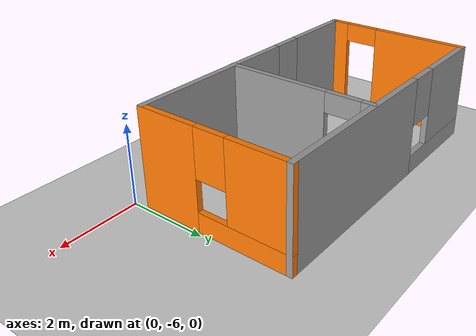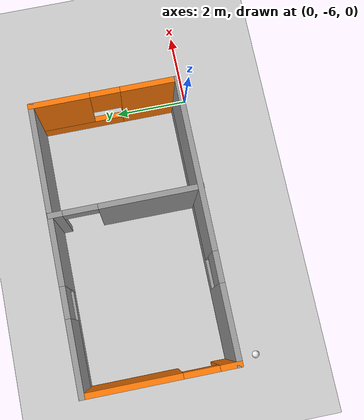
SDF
<sdf version="1.7">
 <world name="default">
  <model name="ground_plane">
   <static>1</static>
   <link name="link">
    <collision name="collision">
     <geometry><plane><normal>0 0 1</normal><size>100 100</size></plane></geometry>
     <surface>
      <contact><collide_bitmask>65535</collide_bitmask></contact>
      <friction><ode><mu>100</mu><mu2>50</mu2></ode></friction>
     </surface>
    </collision>
    <visual name="visual">
     <cast_shadows>0</cast_shadows>
     <geometry><plane><normal>0 0 1</normal><size>100 100</size></plane></geometry>
     <material>
      <script><uri>file://media/materials/scripts/gazebo.material</uri><name>Gazebo/Grey</name></script>
     </material>
    </visual>
   </link>
  </model>
  <light name="sun" type="directional">
   <pose>0 0 10 0 -0 0</pose>
   <diffuse>0.8 0.8 0.8 1</diffuse>
   <specular>0.2 0.2 0.2 1</specular>
   <attenuation>
    <range>1000</range>
    <constant>0.9</constant>
    <linear>0.01</linear>
    <quadratic>0.001</quadratic>
   </attenuation>
   <direction>-0.5 0.1 -0.9</direction>
   <spot><inner_angle>0</inner_angle><outer_angle>0</outer_angle><falloff>0</falloff></spot>
  </light>
  <gravity>0 0 -9.8</gravity>
  <magnetic_field>6e-06 2.3e-05 -4.2e-05</magnetic_field>
  <atmosphere type="adiabatic"/>
  <physics type="ode">
   <max_step_size>0.001</max_step_size>
   <real_time_factor>1</real_time_factor>
   <real_time_update_rate>1000</real_time_update_rate>
  </physics>
  <scene><ambient>0.4 0.4 0.4 1</ambient><background>0.7 0.7 0.7 1</background><shadows>1</shadows></scene>
  <spherical_coordinates>
   <surface_model>EARTH_WGS84</surface_model>
   <latitude_deg>0</latitude_deg>
   <longitude_deg>0</longitude_deg>
   <elevation>0</elevation>
   <heading_deg>0</heading_deg>
  </spherical_coordinates>
  <model name="my_world.world">
   <pose>-3.7925 -2.8575 0 0 -0 0</pose>
   <link name="Wall_0">
    <pose>-3.7175 -0.8475 0 0 -0 -1.5708</pose>
    <visual name="Wall_0_Visual_0">
     <pose>-0.7275 0 1.25 0 -0 0</pose>
     <geometry><box><size>2.545 0.15 2.5</size></box></geometry>
     <material>
      <script><uri>file://media/materials/scripts/gazebo.material</uri><name>Gazebo/Grey</name></script>
      <ambient>0.996078 0.47451 0.0196078 1</ambient>
     </material>
     <meta><layer>0</layer></meta>
    </visual>
    <collision name="Wall_0_Collision_0">
     <geometry><box><size>2.545 0.15 2.5</size></box></geometry>
     <pose>-0.7275 0 1.25 0 -0 0</pose>
    </collision>
    <visual name="Wall_0_Visual_1">
     <pose>1.7225 0 1.25 0 -0 0</pose>
     <geometry><box><size>0.555 0.15 2.5</size></box></geometry>
     <material>
      <script><uri>file://media/materials/scripts/gazebo.material</uri><name>Gazebo/Grey</name></script>
      <ambient>0.996078 0.47451 0.0196078 1</ambient>
     </material>
     <meta><layer>0</layer></meta>
    </visual>
    <collision name="Wall_0_Collision_1">
     <geometry><box><size>0.555 0.15 2.5</size></box></geometry>
     <pose>1.7225 0 1.25 0 -0 0</pose>
    </collision>
    <visual name="Wall_0_Visual_2">
     <pose>0.995 0 2.25 0 -0 0</pose>
     <geometry><box><size>0.9 0.15 0.5</size></box></geometry>
     <material>
      <script><uri>file://media/materials/scripts/gazebo.material</uri><name>Gazebo/Grey</name></script>
      <ambient>0.996078 0.47451 0.0196078 1</ambient>
     </material>
     <meta><layer>0</layer></meta>
    </visual>
    <collision name="Wall_0_Collision_2">
     <geometry><box><size>0.9 0.15 0.5</size></box></geometry>
     <pose>0.995 0 2.25 0 -0 0</pose>
    </collision>
   </link>
   <link name="Wall_1">
    <pose>-0.0425 -2.7725 0 0 -0 0</pose>
    <visual name="Wall_1_Visual_0">
     <pose>-2.7225 0 1.25 0 -0 0</pose>
     <geometry><box><size>2.055 0.15 2.5</size></box></geometry>
     <material>
      <script><uri>file://media/materials/scripts/gazebo.material</uri><name>Gazebo/Grey</name></script>
      <ambient>1 1 1 1</ambient>
     </material>
     <meta><layer>0</layer></meta>
    </visual>
    <collision name="Wall_1_Collision_0">
     <geometry><box><size>2.055 0.15 2.5</size></box></geometry>
     <pose>-2.7225 0 1.25 0 -0 0</pose>
    </collision>
    <visual name="Wall_1_Visual_1">
     <pose>1.0275 0 0.25 0 -0 0</pose>
     <geometry><box><size>5.445 0.15 0.5</size></box></geometry>
     <material>
      <script><uri>file://media/materials/scripts/gazebo.material</uri><name>Gazebo/Grey</name></script>
      <ambient>1 1 1 1</ambient>
     </material>
     <meta><layer>0</layer></meta>
    </visual>
    <collision name="Wall_1_Collision_1">
     <geometry><box><size>5.445 0.15 0.5</size></box></geometry>
     <pose>1.0275 0 0.25 0 -0 0</pose>
    </collision>
    <visual name="Wall_1_Visual_2">
     <pose>1.4275 0 1.5 0 -0 0</pose>
     <geometry><box><size>4.645 0.15 2</size></box></geometry>
     <material>
      <script><uri>file://media/materials/scripts/gazebo.material</uri><name>Gazebo/Grey</name></script>
      <ambient>1 1 1 1</ambient>
     </material>
     <meta><layer>0</layer></meta>
    </visual>
    <collision name="Wall_1_Collision_2">
     <geometry><box><size>4.645 0.15 2</size></box></geometry>
     <pose>1.4275 0 1.5 0 -0 0</pose>
    </collision>
    <visual name="Wall_1_Visual_3">
     <pose>-1.295 0 1.9 0 -0 0</pose>
     <geometry><box><size>0.8 0.15 1.2</size></box></geometry>
     <material>
      <script><uri>file://media/materials/scripts/gazebo.material</uri><name>Gazebo/Grey</name></script>
      <ambient>1 1 1 1</ambient>
     </material>
     <meta><layer>0</layer></meta>
    </visual>
    <collision name="Wall_1_Collision_3">
     <geometry><box><size>0.8 0.15 1.2</size></box></geometry>
     <pose>-1.295 0 1.9 0 -0 0</pose>
    </collision>
   </link>
   <link name="Wall_2">
    <pose>3.6325 -0.8475 0 0 -0 1.5708</pose>
    <visual name="Wall_2_Visual_0">
     <pose>-1.2075 0 1.25 0 -0 0</pose>
     <geometry><box><size>1.585 0.15 2.5</size></box></geometry>
     <material>
      <script><uri>file://media/materials/scripts/gazebo.material</uri><name>Gazebo/Grey</name></script>
      <ambient>0.996078 0.47451 0.0196078 1</ambient>
     </material>
     <meta><layer>0</layer></meta>
    </visual>
    <collision name="Wall_2_Collision_0">
     <geometry><box><size>1.585 0.15 2.5</size></box></geometry>
     <pose>-1.2075 0 1.25 0 -0 0</pose>
    </collision>
    <visual name="Wall_2_Visual_1">
     <pose>0.7925 0 0.25 0 -0 0</pose>
     <geometry><box><size>2.415 0.15 0.5</size></box></geometry>
     <material>
      <script><uri>file://media/materials/scripts/gazebo.material</uri><name>Gazebo/Grey</name></script>
      <ambient>0.996078 0.47451 0.0196078 1</ambient>
     </material>
     <meta><layer>0</layer></meta>
    </visual>
    <collision name="Wall_2_Collision_1">
     <geometry><box><size>2.415 0.15 0.5</size></box></geometry>
     <pose>0.7925 0 0.25 0 -0 0</pose>
    </collision>
    <visual name="Wall_2_Visual_2">
     <pose>1.1925 0 1.5 0 -0 0</pose>
     <geometry><box><size>1.615 0.15 2</size></box></geometry>
     <material>
      <script><uri>file://media/materials/scripts/gazebo.material</uri><name>Gazebo/Grey</name></script>
      <ambient>0.996078 0.47451 0.0196078 1</ambient>
     </material>
     <meta><layer>0</layer></meta>
    </visual>
    <collision name="Wall_2_Collision_2">
     <geometry><box><size>1.615 0.15 2</size></box></geometry>
     <pose>1.1925 0 1.5 0 -0 0</pose>
    </collision>
    <visual name="Wall_2_Visual_3">
     <pose>-0.015 0 1.9 0 -0 0</pose>
     <geometry><box><size>0.8 0.15 1.2</size></box></geometry>
     <material>
      <script><uri>file://media/materials/scripts/gazebo.material</uri><name>Gazebo/Grey</name></script>
      <ambient>0.996078 0.47451 0.0196078 1</ambient>
     </material>
     <meta><layer>0</layer></meta>
    </visual>
    <collision name="Wall_2_Collision_3">
     <geometry><box><size>0.8 0.15 1.2</size></box></geometry>
     <pose>-0.015 0 1.9 0 -0 0</pose>
    </collision>
   </link>
   <link name="Wall_3">
    <pose>-0.0425 1.0775 0 0 -0 3.14159</pose>
    <visual name="Wall_3_Visual_0">
     <pose>-1.3675 0 1.25 0 -0 0</pose>
     <geometry><box><size>4.765 0.15 2.5</size></box></geometry>
     <material>
      <script><uri>file://media/materials/scripts/gazebo.material</uri><name>Gazebo/Grey</name></script>
      <ambient>1 1 1 1</ambient>
     </material>
     <meta><layer>0</layer></meta>
    </visual>
    <collision name="Wall_3_Collision_0">
     <geometry><box><size>4.765 0.15 2.5</size></box></geometry>
     <pose>-1.3675 0 1.25 0 -0 0</pose>
    </collision>
    <visual name="Wall_3_Visual_1">
     <pose>2.3825 0 0.25 0 -0 0</pose>
     <geometry><box><size>2.735 0.15 0.5</size></box></geometry>
     <material>
      <script><uri>file://media/materials/scripts/gazebo.material</uri><name>Gazebo/Grey</name></script>
      <ambient>1 1 1 1</ambient>
     </material>
     <meta><layer>0</layer></meta>
    </visual>
    <collision name="Wall_3_Collision_1">
     <geometry><box><size>2.735 0.15 0.5</size></box></geometry>
     <pose>2.3825 0 0.25 0 -0 0</pose>
    </collision>
    <visual name="Wall_3_Visual_2">
     <pose>2.7825 0 1.5 0 -0 0</pose>
     <geometry><box><size>1.935 0.15 2</size></box></geometry>
     <material>
      <script><uri>file://media/materials/scripts/gazebo.material</uri><name>Gazebo/Grey</name></script>
      <ambient>1 1 1 1</ambient>
     </material>
     <meta><layer>0</layer></meta>
    </visual>
    <collision name="Wall_3_Collision_2">
     <geometry><box><size>1.935 0.15 2</size></box></geometry>
     <pose>2.7825 0 1.5 0 -0 0</pose>
    </collision>
    <visual name="Wall_3_Visual_3">
     <pose>1.415 0 1.9 0 -0 0</pose>
     <geometry><box><size>0.8 0.15 1.2</size></box></geometry>
     <material>
      <script><uri>file://media/materials/scripts/gazebo.material</uri><name>Gazebo/Grey</name></script>
      <ambient>1 1 1 1</ambient>
     </material>
     <meta><layer>0</layer></meta>
    </visual>
    <collision name="Wall_3_Collision_3">
     <geometry><box><size>0.8 0.15 1.2</size></box></geometry>
     <pose>1.415 0 1.9 0 -0 0</pose>
    </collision>
   </link>
   <link name="Wall_5">
    <pose>0.7225 -0.8575 0 0 -0 1.5708</pose>
    <visual name="Wall_5_Visual_0">
     <pose>-0.6425 0 1.25 0 -0 0</pose>
     <geometry><box><size>2.715 0.15 2.5</size></box></geometry>
     <material>
      <script><uri>file://media/materials/scripts/gazebo.material</uri><name>Gazebo/Grey</name></script>
      <ambient>1 1 1 1</ambient>
     </material>
     <meta><layer>0</layer></meta>
    </visual>
    <collision name="Wall_5_Collision_0">
     <geometry><box><size>2.715 0.15 2.5</size></box></geometry>
     <pose>-0.6425 0 1.25 0 -0 0</pose>
    </collision>
    <visual name="Wall_5_Visual_1">
     <pose>1.8075 0 1.25 0 -0 0</pose>
     <geometry><box><size>0.385 0.15 2.5</size></box></geometry>
     <material>
      <script><uri>file://media/materials/scripts/gazebo.material</uri><name>Gazebo/Grey</name></script>
      <ambient>1 1 1 1</ambient>
     </material>
     <meta><layer>0</layer></meta>
    </visual>
    <collision name="Wall_5_Collision_1">
     <geometry><box><size>0.385 0.15 2.5</size></box></geometry>
     <pose>1.8075 0 1.25 0 -0 0</pose>
    </collision>
    <visual name="Wall_5_Visual_2">
     <pose>1.165 0 2.25 0 -0 0</pose>
     <geometry><box><size>0.9 0.15 0.5</size></box></geometry>
     <material>
      <script><uri>file://media/materials/scripts/gazebo.material</uri><name>Gazebo/Grey</name></script>
      <ambient>1 1 1 1</ambient>
     </material>
     <meta><layer>0</layer></meta>
    </visual>
    <collision name="Wall_5_Collision_2">
     <geometry><box><size>0.9 0.15 0.5</size></box></geometry>
     <pose>1.165 0 2.25 0 -0 0</pose>
    </collision>
   </link>
   <static>1</static>
  </model>
  <model name="my_ball">
   <pose>-7.47848 -6.39961 0.1 0 0 0</pose>
   <link name="link_0">
    <inertial>
     <mass>1</mass>
     <inertia><ixx>0.1</ixx><ixy>0</ixy><ixz>0</ixz><iyy>0.1</iyy><iyz>0</iyz><izz>0.1</izz></inertia>
    </inertial>
    <collision name="collision"><geometry><sphere><radius>0.1</radius></sphere></geometry></collision>
    <visual name="visual">
     <geometry><sphere><radius>0.1</radius></sphere></geometry>
     <material>
      <script><uri>file://media/materials/scripts/gazebo.material</uri><name>Gazebo/White</name></script>
     </material>
    </visual>
   </link>
  </model>
 </world>
</sdf>
